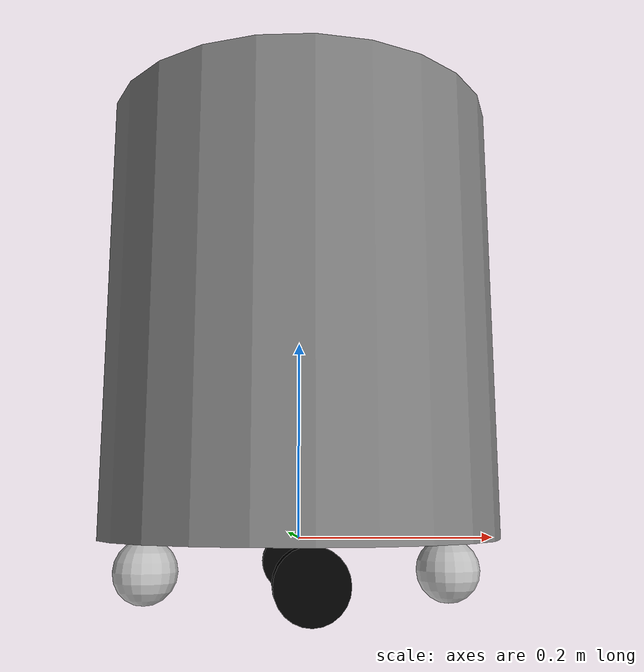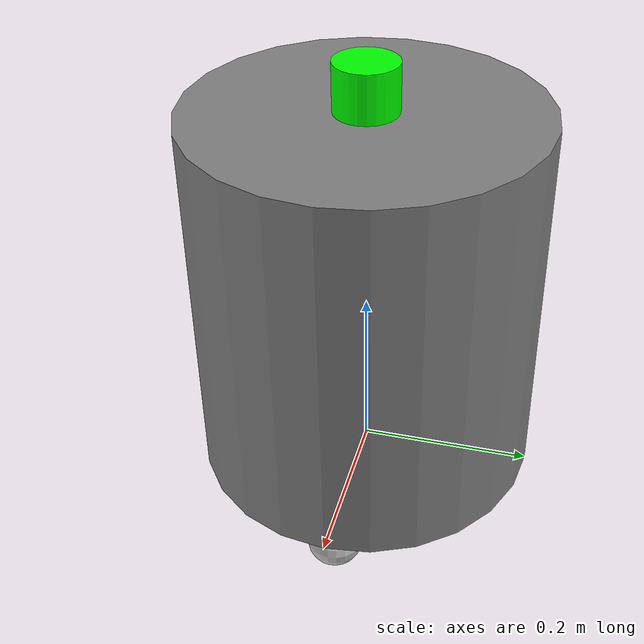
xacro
<?xml version="1.0"?>
<robot name="mybot" xmlns:xacro="http://www.ros.org/wiki/xacro">

<!-- ++++++++++++++++++++++++++++++++ include xacro files +++++++++++++++++++++++++++++++ -->
<xacro:include filename="mybot_macros.xacro" />
<xacro:include filename="mybot_material.xacro" />
<xacro:include filename="gamed.xacro" />

</robot>

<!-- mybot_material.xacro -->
<robot name="mybot" >

<!-- ++++++++++++++++++++++++++++++++ material +++++++++++++++++++++++++++++++ -->
<material name="Gray">
    <color rgba="0.5 0.5 0.5 1"/>
</material>

<material name="Red">
    <color rgba="1.0 0.0 0.0 1.0"/>
</material>

<material name="Green">
    <color rgba="0.0 1.0 0.0 1.0"/>
</material>

<material name="Blue">
    <color rgba="0.0 0.0 1.0 1.0"/>
</material>

<material name="Yellow">
    <color rgba="1.0 1.0 0.0 1.0"/>
</material>

<material name="White">
    <color rgba="1.0 1.0 1.0 1.0"/>
</material>

<material name="Black">
    <color rgba="0.0 0.0 0.0 1.0"/>
</material>

</robot>

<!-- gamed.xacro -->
<robot name="mybot" xmlns:xacro="http://www.ros.org/wiki/xacro">

  <!-- Base footprint -->
  <link name="base_footprint"/>
  <joint name="base_footprint_joint" type="fixed">
    <parent link="base_footprint"/>
    <child link="base_link"/>
    <origin xyz="0 0 0.2205" rpy="0 0 0"/>
  </joint>

  <link name="base_link">
    <inertial>
       <origin xyz="0.0 0.0 0.0" rpy="0.0 0.0 0.0"/>
       <mass value="5.0"/>
       <inertia ixx="0.0" ixy="0.0" ixz="0.0" iyy="0.0" iyz="0.0" izz="0.0"/>
    </inertial>
    <visual>
      <geometry>
        <cylinder length="0.441" radius="0.20"/>
      </geometry>
      <origin xyz="0 0 0" rpy="0 0 0"/>
      <material name="grey"><color rgba="0.5 0.5 0.5 1"/></material>
    </visual>
    <collision>
      <origin xyz="0.0 0.0 0.0" rpy="0.0 0.0 0.0"/>
      <geometry>
        <cylinder length="0.441" radius="0.20"/>
      </geometry>
    </collision>
  </link>

  <!-- Left Wheel -->
  <link name="left_wheel">
    <inertial>
      <origin xyz="0.0 0.0 0.0" rpy="0.0 1.5707 1.5707"/>
      <mass value="5.0"/>
      <inertia ixx="0.1" ixy="0.0" ixz="0.0" iyy="0.1" iyz="0.0" izz="0.1"/>
    </inertial>
    <visual>
      <geometry>
        <cylinder length="0.026" radius="0.0325"/>
      </geometry>
      <origin xyz="0 0 0" rpy="0 0 0"/>
      <material name="black"><color rgba="0 0 0 1"/></material>
    </visual>
    <collision>
      <origin xyz="0.0 0.0 0.0" rpy="0.0 0.0 0.0"/>
      <geometry>
        <cylinder length="0.026" radius="0.0325"/>
      </geometry>
    </collision>
  </link>
  <joint name="left_wheel_joint" type="continuous">
    <parent link="base_link"/>
    <child link="left_wheel"/>
    <origin xyz="0 0.1525 -0.253" rpy="0.0 1.5705 1.5705"/>
    <axis xyz="0 0 1"/>
  </joint>

  <!-- Right Wheel -->
  <link name="right_wheel">
    <inertial>
       <origin xyz="0.0 0.0 0.0" rpy="0.0 0.0 0.0"/>
       <mass value="5.0"/>
       <inertia ixx="0.1" ixy="0.0" ixz="0.0" iyy="0.1" iyz="0.0" izz="0.1"/>
    </inertial>
    <visual>
      <geometry>
        <cylinder length="0.026" radius="0.0325"/>
      </geometry>
      <origin xyz="0 0 0" rpy="0 0 0"/>
      <material name="black"/>
    </visual>
    <collision>
      <origin xyz="0.0 0.0 0.0" rpy="0.0 0.0 0.0"/>
      <geometry>
        <cylinder length="0.026" radius="0.0325"/>
      </geometry>
    </collision>
  </link>
  <joint name="right_wheel_joint" type="continuous">
    <parent link="base_link"/>
    <child link="right_wheel"/>
    <origin xyz="0 -0.1525 -0.253" rpy="0.0 1.5705 1.5705"/>
    <axis xyz="0 0 1"/>
  </joint>

  <!-- Front Caster Wheel -->
  <link name="front_caster_wheel">
    <inertial>
      <origin xyz="0.0 0.0 0.0" rpy="0.0 0.0 0.0"/>
      <mass value="0.0"/>
      <inertia ixx="0.0" ixy="0.0" ixz="0.0" iyy="0.0" iyz="0.0" izz="0.0"/>
    </inertial>
    <visual>
      <origin xyz="0.0 0.0 0.0" rpy="0.0 0.0 0.0"/>
      <geometry>
        <sphere radius="0.0325"/>
      </geometry>
      <material name="silver"><color rgba="0.75 0.75 0.75 1"/></material>
    </visual>
    <collision>
      <origin xyz="0.0 0.0 0.0" rpy="0.0 0.0 0.0"/>
      <geometry>
        <sphere radius="0.0325"/>
      </geometry>
    </collision>
  </link>
  <joint name="front_caster_joint" type="fixed">
    <parent link="base_link"/>
    <child link="front_caster_wheel"/>
    <origin xyz="0.1525025 0 -0.253" rpy="0 0 0"/>
    <axis xyz="0.0 0.0 0.0"/>
  </joint>

  <!-- Rear Caster Wheel -->
  <link name="rear_caster_wheel">
    <inertial>
      <origin xyz="0.0 0.0 0.0" rpy="0.0 0.0 0.0"/>
      <mass value="0.0"/>
      <inertia ixx="0.0" ixy="0.0" ixz="0.0" iyy="0.0" iyz="0.0" izz="0.0"/>
    </inertial>
    <visual>
      <origin xyz="0.0 0.0 0.0" rpy="0.0 0.0 0.0"/>
      <geometry>
        <sphere radius="0.0325"/>
      </geometry>
      <material name="silver"/>
    </visual>
    <collision>
      <origin xyz="0.0 0.0 0.0" rpy="0.0 0.0 0.0"/>
      <geometry>
        <sphere radius="0.0325"/>
      </geometry>
    </collision>
  </link>
  <joint name="rear_caster_joint" type="fixed">
    <parent link="base_link"/>
    <child link="rear_caster_wheel"/>
    <origin xyz="-0.1525025 0 -0.253" rpy="0 0 0"/>
    <axis xyz="0.0 0.0 0.0"/>
  </joint>

<!-- IMU -->
    <link name="imu_link">
        <collision>
        <origin xyz="0 0 0.1" rpy="0 0 0"/>
        <geometry>
            <box size="0.02 0.02 0.02"/>
        </geometry>
        </collision>

        <visual>
        <origin xyz="0 0 0.1" rpy="0 0 0"/>
        <geometry>
            <box size="0.02 0.02 0.02"/>
        </geometry>
        <material name="green"><color rgba="0 1 0 1"/></material>
        </visual>

        <inertial>
        <origin xyz="0 0 1" rpy="0 0 0"/>
        <mass value="1"/>
        <inertia
            ixx="1.0" ixy="0.0" ixz="0.0"
            iyy="1.0" iyz="0.0"
            izz="1.0"/>
        </inertial>
    </link>
  <joint name="imu_joint" type="fixed">
    <parent link="base_link"/>
    <child link="imu_link"/>
    <origin xyz="0 0 -0.2" rpy="0 0 0"/>
  </joint>

<link name="lidar_link">
  <inertial>
     <origin xyz="0.0 0.0 0.0" rpy="0.0 0.0 0.0"/>
     <mass value="0.1"/>
     <inertia ixx="0.0" ixy="0.0" ixz="0.0" iyy="0.0" iyz="0.0" izz="0.0"/>
  </inertial>
  <visual>
    <origin xyz="0 0 0" rpy="0 0 0"/>
    <geometry>
      <cylinder length="0.055" radius="0.036"/>
    </geometry>
    <material name="green"><color rgba="0 1 0 1"/></material>
  </visual>
  <collision>
    <origin xyz="0 0 0" rpy="0 0 0"/>
    <geometry>
      <cylinder length="0.055" radius="0.036"/>
    </geometry>
  </collision>
</link>
<joint name="lidar_joint" type="fixed">
  <parent link="base_link"/>
  <child link="lidar_link"/>
  <origin xyz="0 0 0.248" rpy="0 0 0"/>
</joint>

  <!-- LiDAR -->
  <link name="laser">
  </link>
  <joint name="laser_data_joint" type="fixed">
    <parent link="lidar_link"/>
    <child link="laser"/>
    <origin xyz="0 0 0" rpy="0 0 0"/>
  </joint>

</robot>
